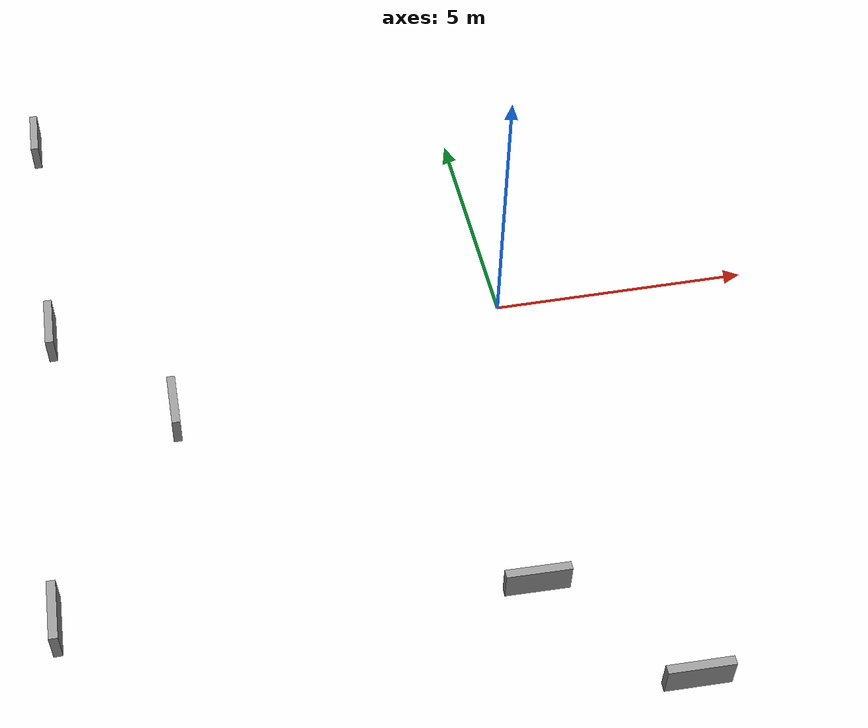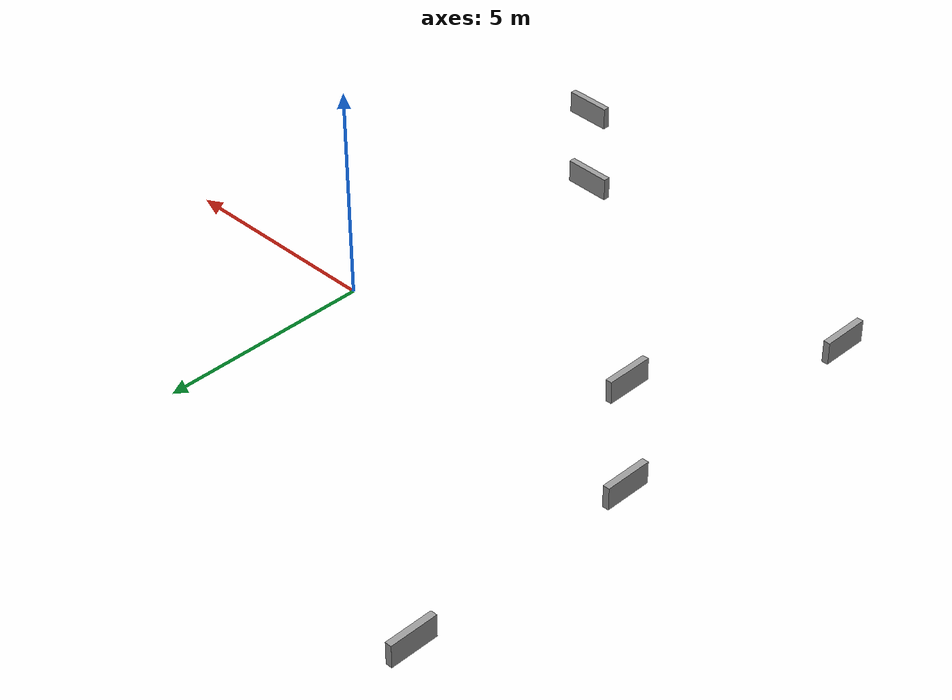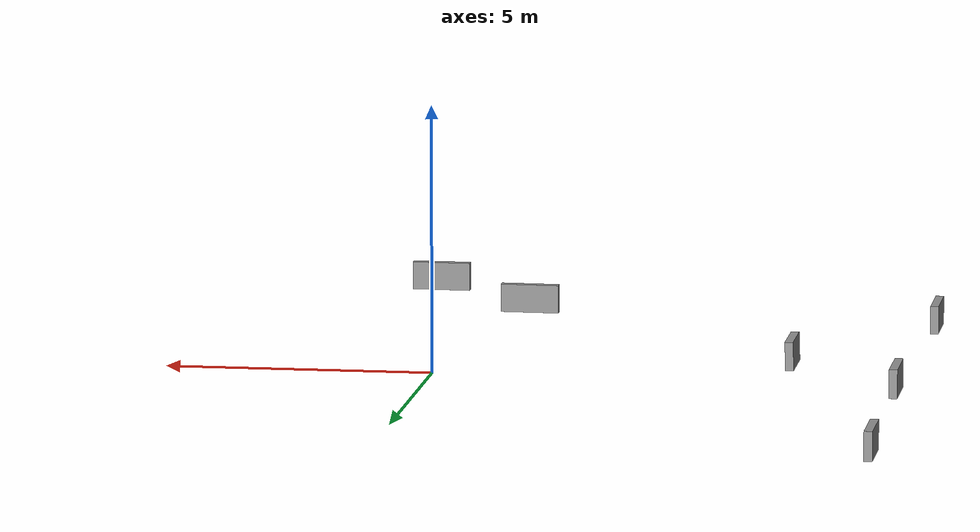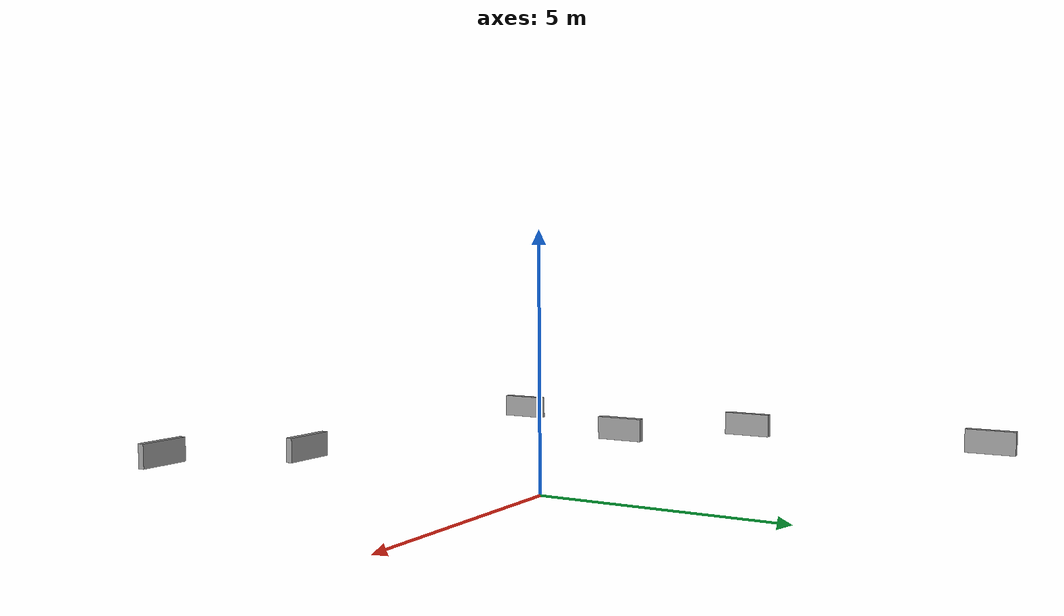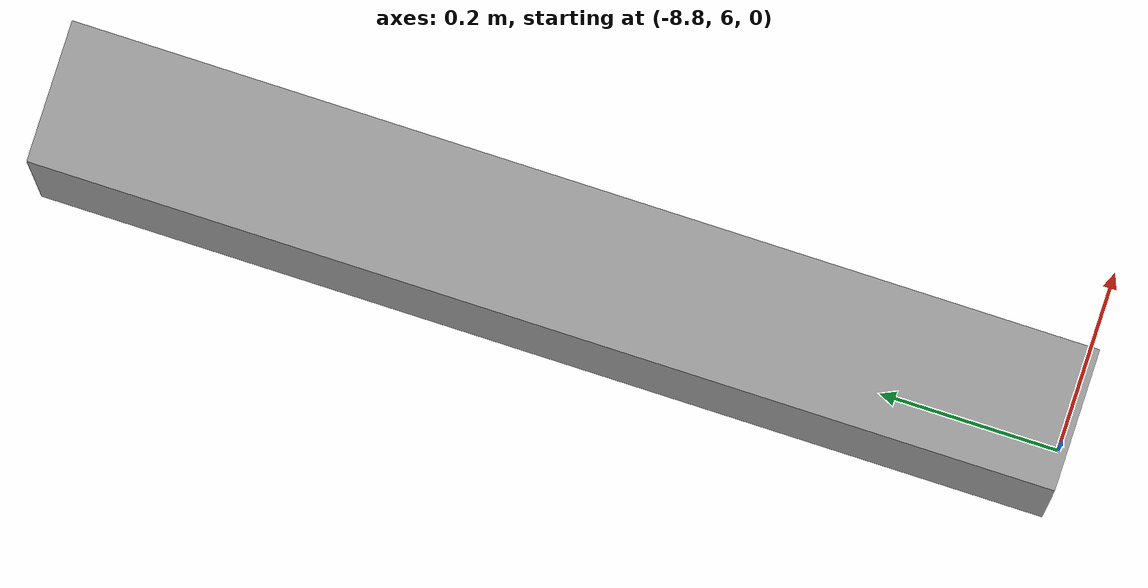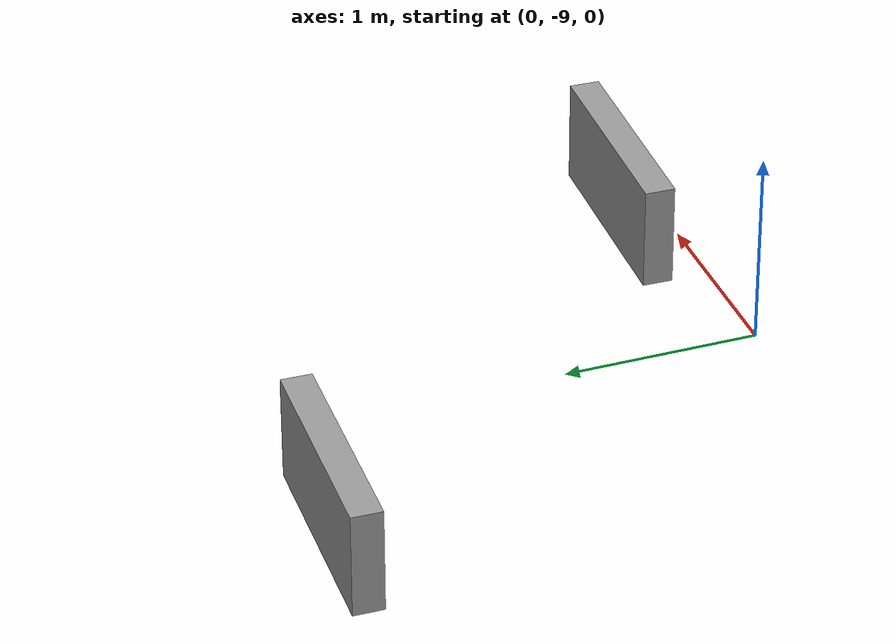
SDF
<?xml version="1.0" ?>
<sdf version="1.5">
  <model name='obstacle'>
    <static>1</static>
    <model name='box_1'>
      <static>1</static>
      <pose frame=''>-8.79525 6.55756 0.26942 0 0 0</pose>
      <link name='link'>
        <inertial>
          <mass>1</mass>
          <inertia>
            <ixx>0.166667</ixx>
            <ixy>0</ixy>
            <ixz>0</ixz>
            <iyy>0.166667</iyy>
            <iyz>0</iyz>
            <izz>0.166667</izz>
          </inertia>
        </inertial>
        <collision name='collision'>
          <geometry>
            <box>
              <size>0.154617 1.12556 0.538644</size>
            </box>
          </geometry>
          <max_contacts>10</max_contacts>
          <surface>
            <contact>
              <ode/>
            </contact>
            <bounce/>
            <friction>
              <torsional>
                <ode/>
              </torsional>
              <ode/>
            </friction>
          </surface>
        </collision>
        <visual name='visual'>
          <geometry>
            <box>
              <size>0.154617 1.12556 0.538644</size>
            </box>
          </geometry>
          <material>
            <script>
              <name>Gazebo/Grey</name>
              <uri>file://media/materials/scripts/gazebo.material</uri>
            </script>
          </material>
        </visual>
        <self_collide>0</self_collide>
        <kinematic>0</kinematic>
        <gravity>1</gravity>
      </link>
    </model>
    <model name='box_2'>
      <static>true</static>
      <pose frame=''>-8.67589 0.75435 0.26942 -1e-06 -2e-06 -0.000211</pose>
      <link name='link'>
        <inertial>
          <mass>1</mass>
          <inertia>
            <ixx>0.166667</ixx>
            <ixy>0</ixy>
            <ixz>0</ixz>
            <iyy>0.166667</iyy>
            <iyz>0</iyz>
            <izz>0.166667</izz>
          </inertia>
        </inertial>
        <collision name='collision'>
          <geometry>
            <box>
              <size>0.154617 1.12556 0.538644</size>
            </box>
          </geometry>
          <max_contacts>10</max_contacts>
          <surface>
            <contact>
              <ode/>
            </contact>
            <bounce/>
            <friction>
              <torsional>
                <ode/>
              </torsional>
              <ode/>
            </friction>
          </surface>
        </collision>
        <visual name='visual'>
          <geometry>
            <box>
              <size>0.154617 1.12556 0.538644</size>
            </box>
          </geometry>
          <material>
            <script>
              <name>Gazebo/Grey</name>
              <uri>file://media/materials/scripts/gazebo.material</uri>
            </script>
          </material>
        </visual>
        <self_collide>0</self_collide>
        <kinematic>0</kinematic>
        <gravity>1</gravity>
      </link>
    </model>
    <model name='box_3'>
      <static>true</static>
      <pose frame=''>-6.5101 -1.66586 0.271645 0 0.030369 0.002364</pose>
      <link name='link'>
        <inertial>
          <mass>1</mass>
          <inertia>
            <ixx>0.166667</ixx>
            <ixy>0</ixy>
            <ixz>0</ixz>
            <iyy>0.166667</iyy>
            <iyz>0</iyz>
            <izz>0.166667</izz>
          </inertia>
        </inertial>
        <collision name='collision'>
          <geometry>
            <box>
              <size>0.154617 1.12556 0.538644</size>
            </box>
          </geometry>
          <max_contacts>10</max_contacts>
          <surface>
            <contact>
              <ode/>
            </contact>
            <bounce/>
            <friction>
              <torsional>
                <ode/>
              </torsional>
              <ode/>
            </friction>
          </surface>
        </collision>
        <visual name='visual'>
          <geometry>
            <box>
              <size>0.154617 1.12556 0.538644</size>
            </box>
          </geometry>
          <material>
            <script>
              <name>Gazebo/Grey</name>
              <uri>file://media/materials/scripts/gazebo.material</uri>
            </script>
          </material>
        </visual>
        <self_collide>0</self_collide>
        <kinematic>0</kinematic>
        <gravity>1</gravity>
      </link>
    </model>
    <model name='box_4'>
      <static>true</static>
      <pose frame=''>-8.83332 -5.80146 0.26942 -0 -0 -0.000209</pose>
      <link name='link'>
        <inertial>
          <mass>1</mass>
          <inertia>
            <ixx>0.166667</ixx>
            <ixy>0</ixy>
            <ixz>0</ixz>
            <iyy>0.166667</iyy>
            <iyz>0</iyz>
            <izz>0.166667</izz>
          </inertia>
        </inertial>
        <collision name='collision'>
          <geometry>
            <box>
              <size>0.154617 1.12556 0.538644</size>
            </box>
          </geometry>
          <max_contacts>10</max_contacts>
          <surface>
            <contact>
              <ode/>
            </contact>
            <bounce/>
            <friction>
              <torsional>
                <ode/>
              </torsional>
              <ode/>
            </friction>
          </surface>
        </collision>
        <visual name='visual'>
          <geometry>
            <box>
              <size>0.154617 1.12556 0.538644</size>
            </box>
          </geometry>
          <material>
            <script>
              <name>Gazebo/Grey</name>
              <uri>file://media/materials/scripts/gazebo.material</uri>
            </script>
          </material>
        </visual>
        <self_collide>0</self_collide>
        <kinematic>0</kinematic>
        <gravity>1</gravity>
      </link>
    </model>

    <model name='box_6'>
      <static>1</static>
      <pose frame=''>1.16997 -8.74604 0.269425 -0 -0 -1.60013</pose>
      <link name='link'>
        <inertial>
          <mass>1</mass>
          <inertia>
            <ixx>0.166667</ixx>
            <ixy>0</ixy>
            <ixz>0</ixz>
            <iyy>0.166667</iyy>
            <iyz>0</iyz>
            <izz>0.166667</izz>
          </inertia>
        </inertial>
        <collision name='collision'>
          <geometry>
            <box>
              <size>0.154617 1.12556 0.538644</size>
            </box>
          </geometry>
          <max_contacts>10</max_contacts>
          <surface>
            <contact>
              <ode/>
            </contact>
            <bounce/>
            <friction>
              <torsional>
                <ode/>
              </torsional>
              <ode/>
            </friction>
          </surface>
        </collision>
        <visual name='visual'>
          <geometry>
            <box>
              <size>0.154617 1.12556 0.538644</size>
            </box>
          </geometry>
          <material>
            <script>
              <name>Gazebo/Grey</name>
              <uri>file://media/materials/scripts/gazebo.material</uri>
            </script>
          </material>
        </visual>
        <self_collide>0</self_collide>
        <kinematic>0</kinematic>
        <gravity>1</gravity>
      </link>
    </model>
    <model name='box_7'>
      <static>true</static>
      <pose frame=''>-0.89334 -6.52649 0.269425 -0 -0 -1.60013</pose>
      <link name='link'>
        <inertial>
          <mass>1</mass>
          <inertia>
            <ixx>0.166667</ixx>
            <ixy>0</ixy>
            <ixz>0</ixz>
            <iyy>0.166667</iyy>
            <iyz>0</iyz>
            <izz>0.166667</izz>
          </inertia>
        </inertial>
        <collision name='collision'>
          <geometry>
            <box>
              <size>0.154617 1.12556 0.538644</size>
            </box>
          </geometry>
          <max_contacts>10</max_contacts>
          <surface>
            <contact>
              <ode/>
            </contact>
            <bounce/>
            <friction>
              <torsional>
                <ode/>
              </torsional>
              <ode/>
            </friction>
          </surface>
        </collision>
        <visual name='visual'>
          <geometry>
            <box>
              <size>0.154617 1.12556 0.538644</size>
            </box>
          </geometry>
          <material>
            <script>
              <name>Gazebo/Grey</name>
              <uri>file://media/materials/scripts/gazebo.material</uri>
            </script>
          </material>
        </visual>
        <self_collide>0</self_collide>
        <kinematic>0</kinematic>
        <gravity>1</gravity>
      </link>
    </model>
  </model>
</sdf>
